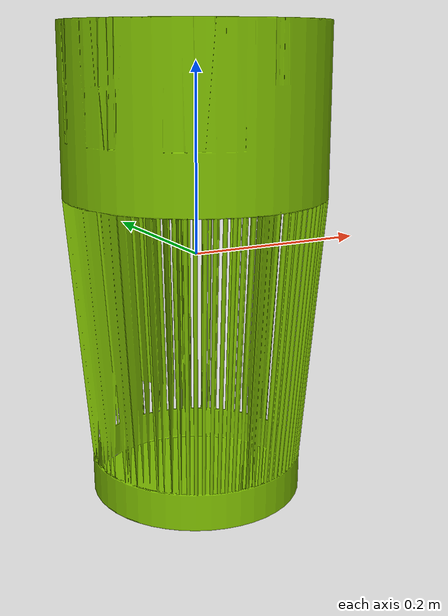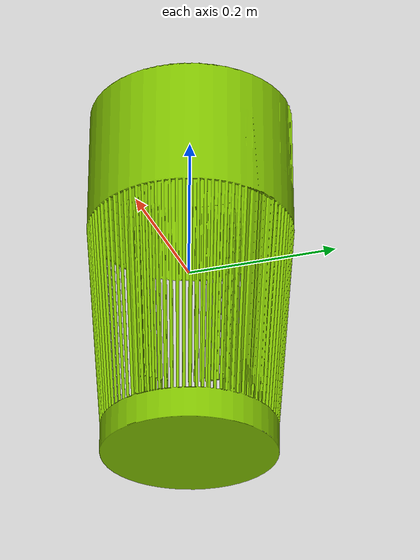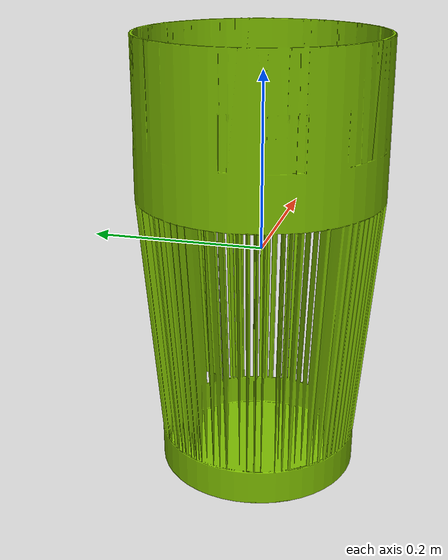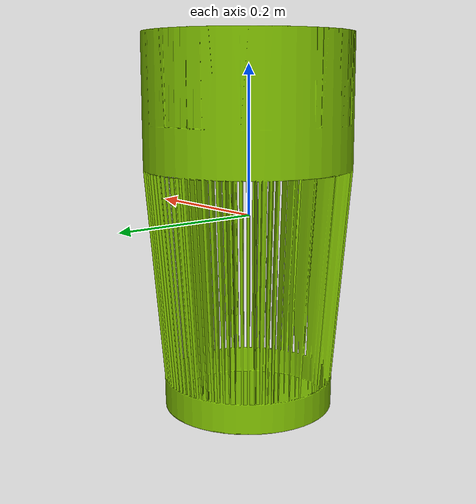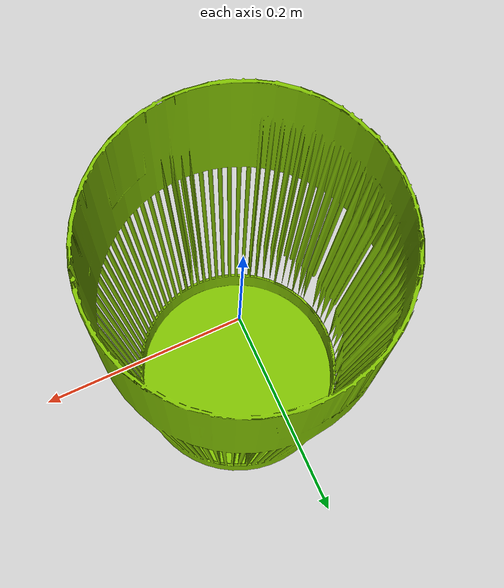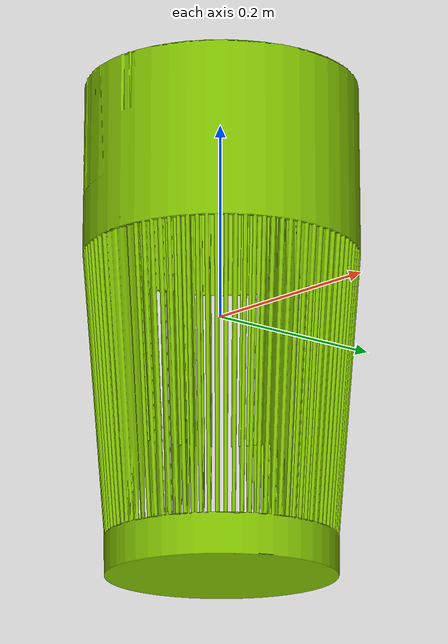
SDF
<?xml version='1.0'?>
<sdf version='1.7'>
    <model name='Robot_Dustbin'>
        <static>false</static>
        <pose>0 0 0 0 0 0</pose>
        <link name="robot_dustbin">
            <collision name="robot_dustbin_collision">
                <geometry>
                <mesh>
                    <uri>$(find artpark_gazebo)/models/robot_dustbin1.dae</uri>
                </mesh>
                </geometry>
            </collision>
            <visual name="robot_dustbin_visual">
                <geometry>
                <mesh>
                    <uri>$(find artpark_gazebo)/models/robot_dustbin1.dae</uri>
                </mesh>
                </geometry>
                <material>
                    <ambient>.7 .9 0 1</ambient>
                    <diffuse>.5 .75 0 1</diffuse>
                </material>
            </visual>
        </link>
    </model>
</sdf>
